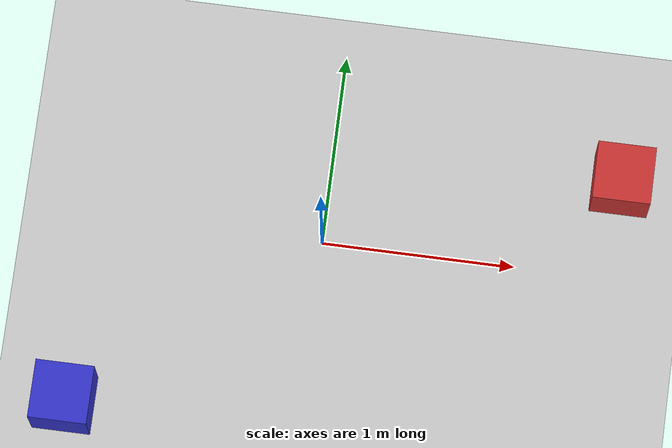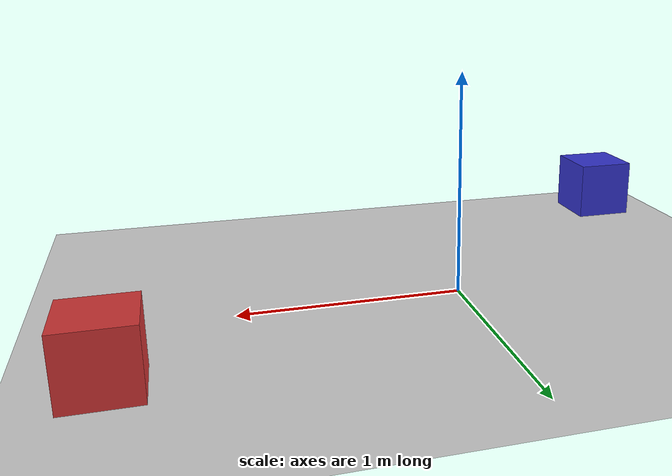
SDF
<?xml version="1.0" ?>
<sdf version="1.6">
  <world name="diffbot_arena">
    <include>
      <uri>model://sun</uri>
    </include>
    <include>
      <uri>model://ground_plane</uri>
    </include>

    <physics type="ode">
      <max_step_size>0.001</max_step_size>
      <real_time_factor>1</real_time_factor>
      <real_time_update_rate>1000</real_time_update_rate>
    </physics>

    <!-- a couple of simple boxes so you can see motion/heading clearly -->
    <model name="box1">
      <static>true</static>
      <pose>1.5 0.5 0.15 0 0 0</pose>
      <link name="link">
        <collision name="collision">
          <geometry><box><size>0.3 0.3 0.3</size></box></geometry>
        </collision>
        <visual name="visual">
          <geometry><box><size>0.3 0.3 0.3</size></box></geometry>
          <material>
            <ambient>0.8 0.2 0.2 1</ambient>
            <diffuse>0.8 0.2 0.2 1</diffuse>
          </material>
        </visual>
      </link>
    </model>

    <model name="box2">
      <static>true</static>
      <pose>-1.2 -1.0 0.15 0 0 0</pose>
      <link name="link">
        <collision name="collision">
          <geometry><box><size>0.3 0.3 0.3</size></box></geometry>
        </collision>
        <visual name="visual">
          <geometry><box><size>0.3 0.3 0.3</size></box></geometry>
          <material>
            <ambient>0.2 0.2 0.8 1</ambient>
            <diffuse>0.2 0.2 0.8 1</diffuse>
          </material>
        </visual>
      </link>
    </model>
  </world>
</sdf>
